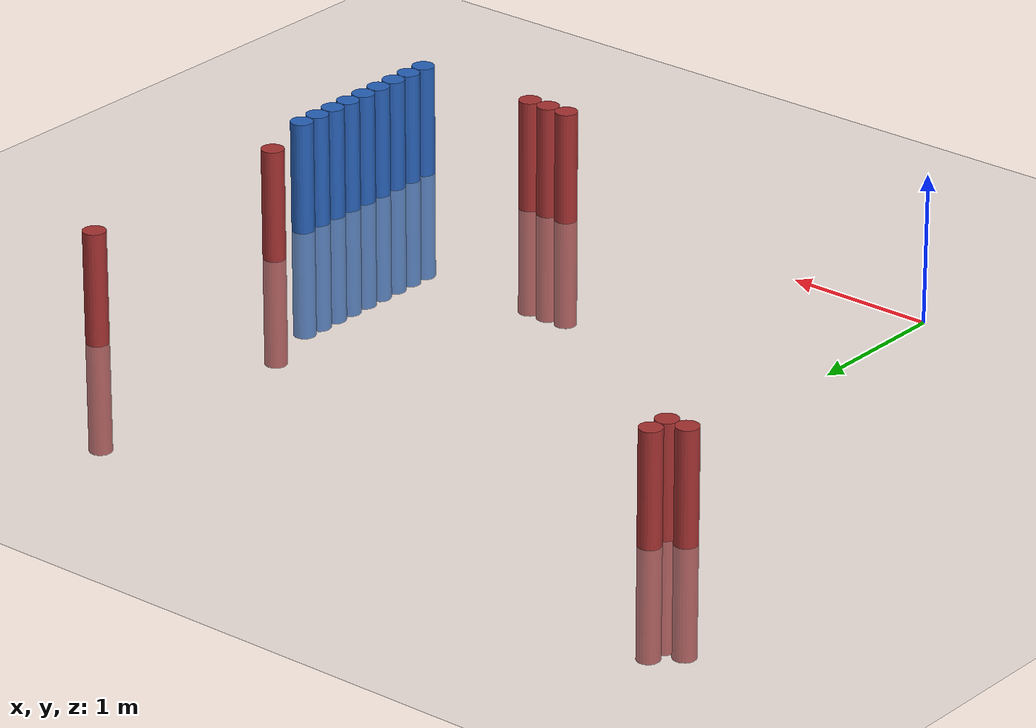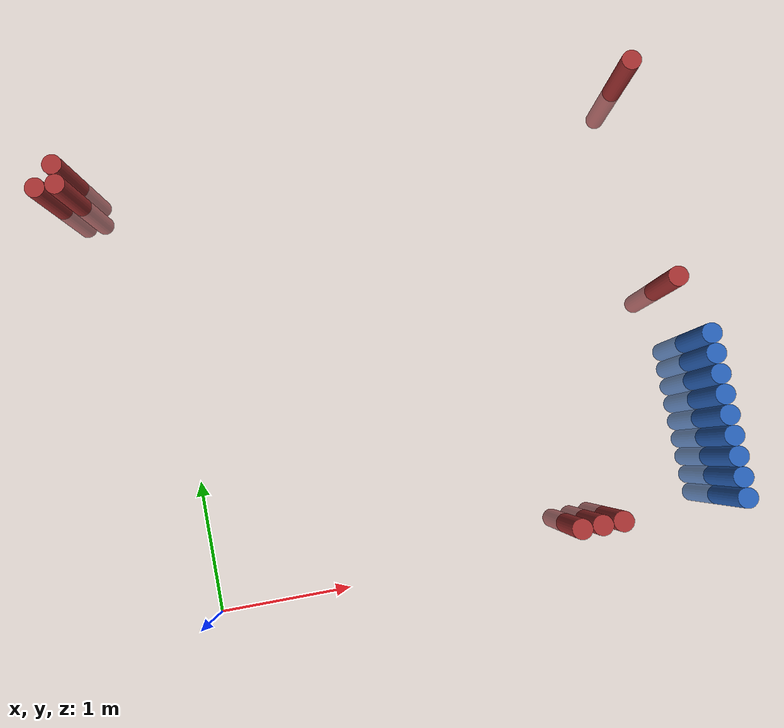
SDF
<sdf version="1.6">
 <world name="default">
  <model name="ground_plane">
   <static>1</static>
   <link name="link">
    <collision name="collision">
     <geometry><plane><normal>0 0 1</normal><size>100 100</size></plane></geometry>
     <surface><friction><ode><mu>100</mu><mu2>50</mu2></ode></friction></surface>
    </collision>
    <visual name="visual">
     <cast_shadows>0</cast_shadows>
     <geometry><plane><normal>0 0 1</normal><size>100 100</size></plane></geometry>
     <material>
      <script><uri>file://media/materials/scripts/gazebo.material</uri><name>Gazebo/Grey</name></script>
     </material>
    </visual>
   </link>
  </model>
  <model name="unit_cylinder_118">
   <static>1</static>
   <pose>3.925000 0.325000 0.000000 0.000000 0.000000 0.000000</pose>
   <link name="link">
    <inertial>
     <mass>1</mass>
     <inertia><ixx>0.145833</ixx><ixy>0</ixy><ixz>0</ixz><iyy>0.145833</iyy><iyz>0</iyz><izz>0.125</izz></inertia>
    </inertial>
    <collision name="collision">
     <geometry><cylinder><radius>0.075000</radius><length>1.5</length></cylinder></geometry>
    </collision>
    <visual name="visual">
     <geometry><cylinder><radius>0.075000</radius><length>1.5</length></cylinder></geometry>
     <material>
      <ambient>0.152000 0.379000 0.720000 1</ambient>
      <diffuse>0.152000 0.379000 0.720000 1</diffuse>
     </material>
     <material>
      <script><name>Gazebo/Grey</name><uri>file://media/materials/scripts/gazebo.material</uri></script>
     </material>
    </visual>
   </link>
  </model>
  <model name="unit_cylinder_120">
   <static>1</static>
   <pose>3.925000 0.475000 0.000000 0.000000 0.000000 0.000000</pose>
   <link name="link">
    <inertial>
     <mass>1</mass>
     <inertia><ixx>0.145833</ixx><ixy>0</ixy><ixz>0</ixz><iyy>0.145833</iyy><iyz>0</iyz><izz>0.125</izz></inertia>
    </inertial>
    <collision name="collision">
     <geometry><cylinder><radius>0.075000</radius><length>1.5</length></cylinder></geometry>
    </collision>
    <visual name="visual">
     <geometry><cylinder><radius>0.075000</radius><length>1.5</length></cylinder></geometry>
     <material>
      <ambient>0.152000 0.379000 0.720000 1</ambient>
      <diffuse>0.152000 0.379000 0.720000 1</diffuse>
     </material>
     <material>
      <script><name>Gazebo/Grey</name><uri>file://media/materials/scripts/gazebo.material</uri></script>
     </material>
    </visual>
   </link>
  </model>
  <model name="unit_cylinder_122">
   <static>1</static>
   <pose>3.925000 0.625000 0.000000 0.000000 0.000000 0.000000</pose>
   <link name="link">
    <inertial>
     <mass>1</mass>
     <inertia><ixx>0.145833</ixx><ixy>0</ixy><ixz>0</ixz><iyy>0.145833</iyy><iyz>0</iyz><izz>0.125</izz></inertia>
    </inertial>
    <collision name="collision">
     <geometry><cylinder><radius>0.075000</radius><length>1.5</length></cylinder></geometry>
    </collision>
    <visual name="visual">
     <geometry><cylinder><radius>0.075000</radius><length>1.5</length></cylinder></geometry>
     <material>
      <ambient>0.152000 0.379000 0.720000 1</ambient>
      <diffuse>0.152000 0.379000 0.720000 1</diffuse>
     </material>
     <material>
      <script><name>Gazebo/Grey</name><uri>file://media/materials/scripts/gazebo.material</uri></script>
     </material>
    </visual>
   </link>
  </model>
  <model name="unit_cylinder_124">
   <static>1</static>
   <pose>3.925000 0.775000 0.000000 0.000000 0.000000 0.000000</pose>
   <link name="link">
    <inertial>
     <mass>1</mass>
     <inertia><ixx>0.145833</ixx><ixy>0</ixy><ixz>0</ixz><iyy>0.145833</iyy><iyz>0</iyz><izz>0.125</izz></inertia>
    </inertial>
    <collision name="collision">
     <geometry><cylinder><radius>0.075000</radius><length>1.5</length></cylinder></geometry>
    </collision>
    <visual name="visual">
     <geometry><cylinder><radius>0.075000</radius><length>1.5</length></cylinder></geometry>
     <material>
      <ambient>0.152000 0.379000 0.720000 1</ambient>
      <diffuse>0.152000 0.379000 0.720000 1</diffuse>
     </material>
     <material>
      <script><name>Gazebo/Grey</name><uri>file://media/materials/scripts/gazebo.material</uri></script>
     </material>
    </visual>
   </link>
  </model>
  <model name="unit_cylinder_126">
   <static>1</static>
   <pose>3.925000 0.925000 0.000000 0.000000 0.000000 0.000000</pose>
   <link name="link">
    <inertial>
     <mass>1</mass>
     <inertia><ixx>0.145833</ixx><ixy>0</ixy><ixz>0</ixz><iyy>0.145833</iyy><iyz>0</iyz><izz>0.125</izz></inertia>
    </inertial>
    <collision name="collision">
     <geometry><cylinder><radius>0.075000</radius><length>1.5</length></cylinder></geometry>
    </collision>
    <visual name="visual">
     <geometry><cylinder><radius>0.075000</radius><length>1.5</length></cylinder></geometry>
     <material>
      <ambient>0.152000 0.379000 0.720000 1</ambient>
      <diffuse>0.152000 0.379000 0.720000 1</diffuse>
     </material>
     <material>
      <script><name>Gazebo/Grey</name><uri>file://media/materials/scripts/gazebo.material</uri></script>
     </material>
    </visual>
   </link>
  </model>
  <model name="unit_cylinder_128">
   <static>1</static>
   <pose>3.925000 1.075000 0.000000 0.000000 0.000000 0.000000</pose>
   <link name="link">
    <inertial>
     <mass>1</mass>
     <inertia><ixx>0.145833</ixx><ixy>0</ixy><ixz>0</ixz><iyy>0.145833</iyy><iyz>0</iyz><izz>0.125</izz></inertia>
    </inertial>
    <collision name="collision">
     <geometry><cylinder><radius>0.075000</radius><length>1.5</length></cylinder></geometry>
    </collision>
    <visual name="visual">
     <geometry><cylinder><radius>0.075000</radius><length>1.5</length></cylinder></geometry>
     <material>
      <ambient>0.152000 0.379000 0.720000 1</ambient>
      <diffuse>0.152000 0.379000 0.720000 1</diffuse>
     </material>
     <material>
      <script><name>Gazebo/Grey</name><uri>file://media/materials/scripts/gazebo.material</uri></script>
     </material>
    </visual>
   </link>
  </model>
  <model name="unit_cylinder_130">
   <static>1</static>
   <pose>3.925000 1.225000 0.000000 0.000000 0.000000 0.000000</pose>
   <link name="link">
    <inertial>
     <mass>1</mass>
     <inertia><ixx>0.145833</ixx><ixy>0</ixy><ixz>0</ixz><iyy>0.145833</iyy><iyz>0</iyz><izz>0.125</izz></inertia>
    </inertial>
    <collision name="collision">
     <geometry><cylinder><radius>0.075000</radius><length>1.5</length></cylinder></geometry>
    </collision>
    <visual name="visual">
     <geometry><cylinder><radius>0.075000</radius><length>1.5</length></cylinder></geometry>
     <material>
      <ambient>0.152000 0.379000 0.720000 1</ambient>
      <diffuse>0.152000 0.379000 0.720000 1</diffuse>
     </material>
     <material>
      <script><name>Gazebo/Grey</name><uri>file://media/materials/scripts/gazebo.material</uri></script>
     </material>
    </visual>
   </link>
  </model>
  <model name="unit_cylinder_132">
   <static>1</static>
   <pose>3.925000 1.375000 0.000000 0.000000 0.000000 0.000000</pose>
   <link name="link">
    <inertial>
     <mass>1</mass>
     <inertia><ixx>0.145833</ixx><ixy>0</ixy><ixz>0</ixz><iyy>0.145833</iyy><iyz>0</iyz><izz>0.125</izz></inertia>
    </inertial>
    <collision name="collision">
     <geometry><cylinder><radius>0.075000</radius><length>1.5</length></cylinder></geometry>
    </collision>
    <visual name="visual">
     <geometry><cylinder><radius>0.075000</radius><length>1.5</length></cylinder></geometry>
     <material>
      <ambient>0.152000 0.379000 0.720000 1</ambient>
      <diffuse>0.152000 0.379000 0.720000 1</diffuse>
     </material>
     <material>
      <script><name>Gazebo/Grey</name><uri>file://media/materials/scripts/gazebo.material</uri></script>
     </material>
    </visual>
   </link>
  </model>
  <model name="unit_cylinder_282">
   <static>1</static>
   <pose>-0.725000 3.325000 0.000000 0.000000 0.000000 0.000000</pose>
   <link name="link">
    <inertial>
     <mass>1</mass>
     <inertia><ixx>0.145833</ixx><ixy>0</ixy><ixz>0</ixz><iyy>0.145833</iyy><iyz>0</iyz><izz>0.125</izz></inertia>
    </inertial>
    <collision name="collision">
     <geometry><cylinder><radius>0.075000</radius><length>1.5</length></cylinder></geometry>
    </collision>
    <visual name="visual">
     <geometry><cylinder><radius>0.075000</radius><length>1.5</length></cylinder></geometry>
     <material>
      <ambient>0.648000 0.192000 0.192000 1</ambient>
      <diffuse>0.648000 0.192000 0.192000 1</diffuse>
     </material>
     <material>
      <script><name>Gazebo/Grey</name><uri>file://media/materials/scripts/gazebo.material</uri></script>
     </material>
    </visual>
   </link>
  </model>
  <model name="unit_cylinder_283">
   <static>1</static>
   <pose>-0.575000 3.325000 0.000000 0.000000 0.000000 0.000000</pose>
   <link name="link">
    <inertial>
     <mass>1</mass>
     <inertia><ixx>0.145833</ixx><ixy>0</ixy><ixz>0</ixz><iyy>0.145833</iyy><iyz>0</iyz><izz>0.125</izz></inertia>
    </inertial>
    <collision name="collision">
     <geometry><cylinder><radius>0.075000</radius><length>1.5</length></cylinder></geometry>
    </collision>
    <visual name="visual">
     <geometry><cylinder><radius>0.075000</radius><length>1.5</length></cylinder></geometry>
     <material>
      <ambient>0.648000 0.192000 0.192000 1</ambient>
      <diffuse>0.648000 0.192000 0.192000 1</diffuse>
     </material>
     <material>
      <script><name>Gazebo/Grey</name><uri>file://media/materials/scripts/gazebo.material</uri></script>
     </material>
    </visual>
   </link>
  </model>
  <model name="unit_cylinder_284">
   <static>1</static>
   <pose>-0.575000 3.475000 0.000000 0.000000 0.000000 0.000000</pose>
   <link name="link">
    <inertial>
     <mass>1</mass>
     <inertia><ixx>0.145833</ixx><ixy>0</ixy><ixz>0</ixz><iyy>0.145833</iyy><iyz>0</iyz><izz>0.125</izz></inertia>
    </inertial>
    <collision name="collision">
     <geometry><cylinder><radius>0.075000</radius><length>1.5</length></cylinder></geometry>
    </collision>
    <visual name="visual">
     <geometry><cylinder><radius>0.075000</radius><length>1.5</length></cylinder></geometry>
     <material>
      <ambient>0.648000 0.192000 0.192000 1</ambient>
      <diffuse>0.648000 0.192000 0.192000 1</diffuse>
     </material>
     <material>
      <script><name>Gazebo/Grey</name><uri>file://media/materials/scripts/gazebo.material</uri></script>
     </material>
    </visual>
   </link>
  </model>
  <model name="unit_cylinder_296">
   <static>1</static>
   <pose>2.725000 0.175000 0.000000 0.000000 0.000000 0.000000</pose>
   <link name="link">
    <inertial>
     <mass>1</mass>
     <inertia><ixx>0.145833</ixx><ixy>0</ixy><ixz>0</ixz><iyy>0.145833</iyy><iyz>0</iyz><izz>0.125</izz></inertia>
    </inertial>
    <collision name="collision">
     <geometry><cylinder><radius>0.075000</radius><length>1.5</length></cylinder></geometry>
    </collision>
    <visual name="visual">
     <geometry><cylinder><radius>0.075000</radius><length>1.5</length></cylinder></geometry>
     <material>
      <ambient>0.648000 0.192000 0.192000 1</ambient>
      <diffuse>0.648000 0.192000 0.192000 1</diffuse>
     </material>
     <material>
      <script><name>Gazebo/Grey</name><uri>file://media/materials/scripts/gazebo.material</uri></script>
     </material>
    </visual>
   </link>
  </model>
  <model name="unit_cylinder_298">
   <static>1</static>
   <pose>2.875000 0.175000 0.000000 0.000000 0.000000 0.000000</pose>
   <link name="link">
    <inertial>
     <mass>1</mass>
     <inertia><ixx>0.145833</ixx><ixy>0</ixy><ixz>0</ixz><iyy>0.145833</iyy><iyz>0</iyz><izz>0.125</izz></inertia>
    </inertial>
    <collision name="collision">
     <geometry><cylinder><radius>0.075000</radius><length>1.5</length></cylinder></geometry>
    </collision>
    <visual name="visual">
     <geometry><cylinder><radius>0.075000</radius><length>1.5</length></cylinder></geometry>
     <material>
      <ambient>0.648000 0.192000 0.192000 1</ambient>
      <diffuse>0.648000 0.192000 0.192000 1</diffuse>
     </material>
     <material>
      <script><name>Gazebo/Grey</name><uri>file://media/materials/scripts/gazebo.material</uri></script>
     </material>
    </visual>
   </link>
  </model>
  <model name="unit_cylinder_301">
   <static>1</static>
   <pose>3.025000 0.175000 0.000000 0.000000 0.000000 0.000000</pose>
   <link name="link">
    <inertial>
     <mass>1</mass>
     <inertia><ixx>0.145833</ixx><ixy>0</ixy><ixz>0</ixz><iyy>0.145833</iyy><iyz>0</iyz><izz>0.125</izz></inertia>
    </inertial>
    <collision name="collision">
     <geometry><cylinder><radius>0.075000</radius><length>1.5</length></cylinder></geometry>
    </collision>
    <visual name="visual">
     <geometry><cylinder><radius>0.075000</radius><length>1.5</length></cylinder></geometry>
     <material>
      <ambient>0.648000 0.192000 0.192000 1</ambient>
      <diffuse>0.648000 0.192000 0.192000 1</diffuse>
     </material>
     <material>
      <script><name>Gazebo/Grey</name><uri>file://media/materials/scripts/gazebo.material</uri></script>
     </material>
    </visual>
   </link>
  </model>
  <model name="unit_cylinder_306">
   <static>1</static>
   <pose>3.775000 1.825000 0.000000 0.000000 0.000000 0.000000</pose>
   <link name="link">
    <inertial>
     <mass>1</mass>
     <inertia><ixx>0.145833</ixx><ixy>0</ixy><ixz>0</ixz><iyy>0.145833</iyy><iyz>0</iyz><izz>0.125</izz></inertia>
    </inertial>
    <collision name="collision">
     <geometry><cylinder><radius>0.075000</radius><length>1.5</length></cylinder></geometry>
    </collision>
    <visual name="visual">
     <geometry><cylinder><radius>0.075000</radius><length>1.5</length></cylinder></geometry>
     <material>
      <ambient>0.648000 0.192000 0.192000 1</ambient>
      <diffuse>0.648000 0.192000 0.192000 1</diffuse>
     </material>
     <material>
      <script><name>Gazebo/Grey</name><uri>file://media/materials/scripts/gazebo.material</uri></script>
     </material>
    </visual>
   </link>
  </model>
  <model name="unit_cylinder_307">
   <static>1</static>
   <pose>3.775000 3.475000 0.000000 0.000000 0.000000 0.000000</pose>
   <link name="link">
    <inertial>
     <mass>1</mass>
     <inertia><ixx>0.145833</ixx><ixy>0</ixy><ixz>0</ixz><iyy>0.145833</iyy><iyz>0</iyz><izz>0.125</izz></inertia>
    </inertial>
    <collision name="collision">
     <geometry><cylinder><radius>0.075000</radius><length>1.5</length></cylinder></geometry>
    </collision>
    <visual name="visual">
     <geometry><cylinder><radius>0.075000</radius><length>1.5</length></cylinder></geometry>
     <material>
      <ambient>0.648000 0.192000 0.192000 1</ambient>
      <diffuse>0.648000 0.192000 0.192000 1</diffuse>
     </material>
     <material>
      <script><name>Gazebo/Grey</name><uri>file://media/materials/scripts/gazebo.material</uri></script>
     </material>
    </visual>
   </link>
  </model>
  <model name="unit_cylinder_325">
   <static>1</static>
   <pose>3.925000 0.175000 0.000000 0.000000 0.000000 0.000000</pose>
   <link name="link">
    <inertial>
     <mass>1</mass>
     <inertia><ixx>0.145833</ixx><ixy>0</ixy><ixz>0</ixz><iyy>0.145833</iyy><iyz>0</iyz><izz>0.125</izz></inertia>
    </inertial>
    <collision name="collision">
     <geometry><cylinder><radius>0.075000</radius><length>1.5</length></cylinder></geometry>
    </collision>
    <visual name="visual">
     <geometry><cylinder><radius>0.075000</radius><length>1.5</length></cylinder></geometry>
     <material>
      <ambient>0.152000 0.379000 0.720000 1</ambient>
      <diffuse>0.152000 0.379000 0.720000 1</diffuse>
     </material>
     <material>
      <script><name>Gazebo/Grey</name><uri>file://media/materials/scripts/gazebo.material</uri></script>
     </material>
    </visual>
   </link>
  </model>
  <model name="unit_cylinder_326">
   <static>1</static>
   <pose>3.925000 0.325000 0.000000 0.000000 0.000000 0.000000</pose>
   <link name="link">
    <inertial>
     <mass>1</mass>
     <inertia><ixx>0.145833</ixx><ixy>0</ixy><ixz>0</ixz><iyy>0.145833</iyy><iyz>0</iyz><izz>0.125</izz></inertia>
    </inertial>
    <collision name="collision">
     <geometry><cylinder><radius>0.075000</radius><length>1.5</length></cylinder></geometry>
    </collision>
    <visual name="visual">
     <geometry><cylinder><radius>0.075000</radius><length>1.5</length></cylinder></geometry>
     <material>
      <ambient>0.152000 0.379000 0.720000 1</ambient>
      <diffuse>0.152000 0.379000 0.720000 1</diffuse>
     </material>
     <material>
      <script><name>Gazebo/Grey</name><uri>file://media/materials/scripts/gazebo.material</uri></script>
     </material>
    </visual>
   </link>
  </model>
  <model name="unit_cylinder_327">
   <static>1</static>
   <pose>3.925000 0.475000 0.000000 0.000000 0.000000 0.000000</pose>
   <link name="link">
    <inertial>
     <mass>1</mass>
     <inertia><ixx>0.145833</ixx><ixy>0</ixy><ixz>0</ixz><iyy>0.145833</iyy><iyz>0</iyz><izz>0.125</izz></inertia>
    </inertial>
    <collision name="collision">
     <geometry><cylinder><radius>0.075000</radius><length>1.5</length></cylinder></geometry>
    </collision>
    <visual name="visual">
     <geometry><cylinder><radius>0.075000</radius><length>1.5</length></cylinder></geometry>
     <material>
      <ambient>0.152000 0.379000 0.720000 1</ambient>
      <diffuse>0.152000 0.379000 0.720000 1</diffuse>
     </material>
     <material>
      <script><name>Gazebo/Grey</name><uri>file://media/materials/scripts/gazebo.material</uri></script>
     </material>
    </visual>
   </link>
  </model>
  <model name="unit_cylinder_328">
   <static>1</static>
   <pose>3.925000 0.625000 0.000000 0.000000 0.000000 0.000000</pose>
   <link name="link">
    <inertial>
     <mass>1</mass>
     <inertia><ixx>0.145833</ixx><ixy>0</ixy><ixz>0</ixz><iyy>0.145833</iyy><iyz>0</iyz><izz>0.125</izz></inertia>
    </inertial>
    <collision name="collision">
     <geometry><cylinder><radius>0.075000</radius><length>1.5</length></cylinder></geometry>
    </collision>
    <visual name="visual">
     <geometry><cylinder><radius>0.075000</radius><length>1.5</length></cylinder></geometry>
     <material>
      <ambient>0.152000 0.379000 0.720000 1</ambient>
      <diffuse>0.152000 0.379000 0.720000 1</diffuse>
     </material>
     <material>
      <script><name>Gazebo/Grey</name><uri>file://media/materials/scripts/gazebo.material</uri></script>
     </material>
    </visual>
   </link>
  </model>
  <model name="unit_cylinder_329">
   <static>1</static>
   <pose>3.925000 0.775000 0.000000 0.000000 0.000000 0.000000</pose>
   <link name="link">
    <inertial>
     <mass>1</mass>
     <inertia><ixx>0.145833</ixx><ixy>0</ixy><ixz>0</ixz><iyy>0.145833</iyy><iyz>0</iyz><izz>0.125</izz></inertia>
    </inertial>
    <collision name="collision">
     <geometry><cylinder><radius>0.075000</radius><length>1.5</length></cylinder></geometry>
    </collision>
    <visual name="visual">
     <geometry><cylinder><radius>0.075000</radius><length>1.5</length></cylinder></geometry>
     <material>
      <ambient>0.152000 0.379000 0.720000 1</ambient>
      <diffuse>0.152000 0.379000 0.720000 1</diffuse>
     </material>
     <material>
      <script><name>Gazebo/Grey</name><uri>file://media/materials/scripts/gazebo.material</uri></script>
     </material>
    </visual>
   </link>
  </model>
  <model name="unit_cylinder_330">
   <static>1</static>
   <pose>3.925000 0.925000 0.000000 0.000000 0.000000 0.000000</pose>
   <link name="link">
    <inertial>
     <mass>1</mass>
     <inertia><ixx>0.145833</ixx><ixy>0</ixy><ixz>0</ixz><iyy>0.145833</iyy><iyz>0</iyz><izz>0.125</izz></inertia>
    </inertial>
    <collision name="collision">
     <geometry><cylinder><radius>0.075000</radius><length>1.5</length></cylinder></geometry>
    </collision>
    <visual name="visual">
     <geometry><cylinder><radius>0.075000</radius><length>1.5</length></cylinder></geometry>
     <material>
      <ambient>0.152000 0.379000 0.720000 1</ambient>
      <diffuse>0.152000 0.379000 0.720000 1</diffuse>
     </material>
     <material>
      <script><name>Gazebo/Grey</name><uri>file://media/materials/scripts/gazebo.material</uri></script>
     </material>
    </visual>
   </link>
  </model>
  <model name="unit_cylinder_331">
   <static>1</static>
   <pose>3.925000 1.075000 0.000000 0.000000 0.000000 0.000000</pose>
   <link name="link">
    <inertial>
     <mass>1</mass>
     <inertia><ixx>0.145833</ixx><ixy>0</ixy><ixz>0</ixz><iyy>0.145833</iyy><iyz>0</iyz><izz>0.125</izz></inertia>
    </inertial>
    <collision name="collision">
     <geometry><cylinder><radius>0.075000</radius><length>1.5</length></cylinder></geometry>
    </collision>
    <visual name="visual">
     <geometry><cylinder><radius>0.075000</radius><length>1.5</length></cylinder></geometry>
     <material>
      <ambient>0.152000 0.379000 0.720000 1</ambient>
      <diffuse>0.152000 0.379000 0.720000 1</diffuse>
     </material>
     <material>
      <script><name>Gazebo/Grey</name><uri>file://media/materials/scripts/gazebo.material</uri></script>
     </material>
    </visual>
   </link>
  </model>
  <model name="unit_cylinder_332">
   <static>1</static>
   <pose>3.925000 1.225000 0.000000 0.000000 0.000000 0.000000</pose>
   <link name="link">
    <inertial>
     <mass>1</mass>
     <inertia><ixx>0.145833</ixx><ixy>0</ixy><ixz>0</ixz><iyy>0.145833</iyy><iyz>0</iyz><izz>0.125</izz></inertia>
    </inertial>
    <collision name="collision">
     <geometry><cylinder><radius>0.075000</radius><length>1.5</length></cylinder></geometry>
    </collision>
    <visual name="visual">
     <geometry><cylinder><radius>0.075000</radius><length>1.5</length></cylinder></geometry>
     <material>
      <ambient>0.152000 0.379000 0.720000 1</ambient>
      <diffuse>0.152000 0.379000 0.720000 1</diffuse>
     </material>
     <material>
      <script><name>Gazebo/Grey</name><uri>file://media/materials/scripts/gazebo.material</uri></script>
     </material>
    </visual>
   </link>
  </model>
  <model name="unit_cylinder_333">
   <static>1</static>
   <pose>3.925000 1.375000 0.000000 0.000000 0.000000 0.000000</pose>
   <link name="link">
    <inertial>
     <mass>1</mass>
     <inertia><ixx>0.145833</ixx><ixy>0</ixy><ixz>0</ixz><iyy>0.145833</iyy><iyz>0</iyz><izz>0.125</izz></inertia>
    </inertial>
    <collision name="collision">
     <geometry><cylinder><radius>0.075000</radius><length>1.5</length></cylinder></geometry>
    </collision>
    <visual name="visual">
     <geometry><cylinder><radius>0.075000</radius><length>1.5</length></cylinder></geometry>
     <material>
      <ambient>0.152000 0.379000 0.720000 1</ambient>
      <diffuse>0.152000 0.379000 0.720000 1</diffuse>
     </material>
     <material>
      <script><name>Gazebo/Grey</name><uri>file://media/materials/scripts/gazebo.material</uri></script>
     </material>
    </visual>
   </link>
  </model>
 </world>
</sdf>
